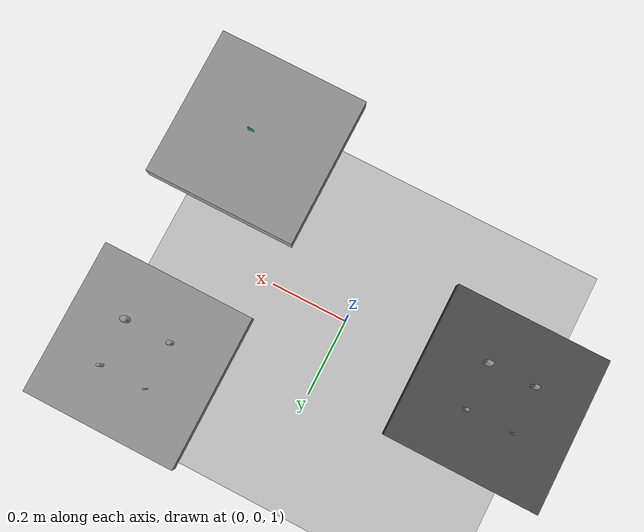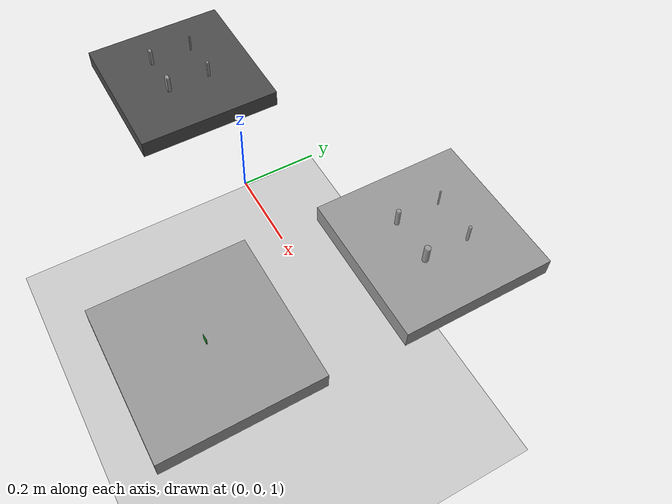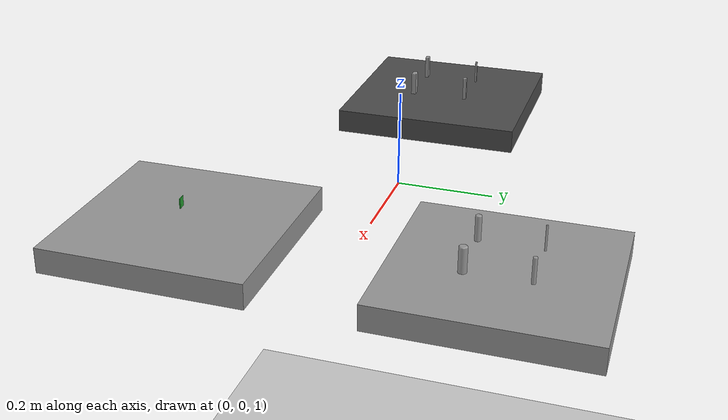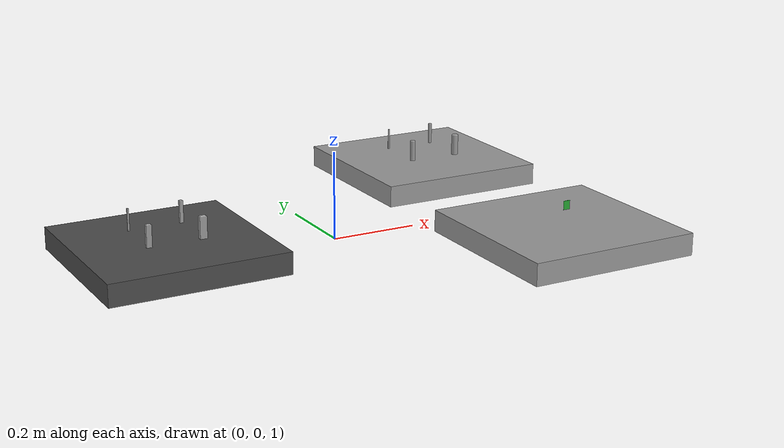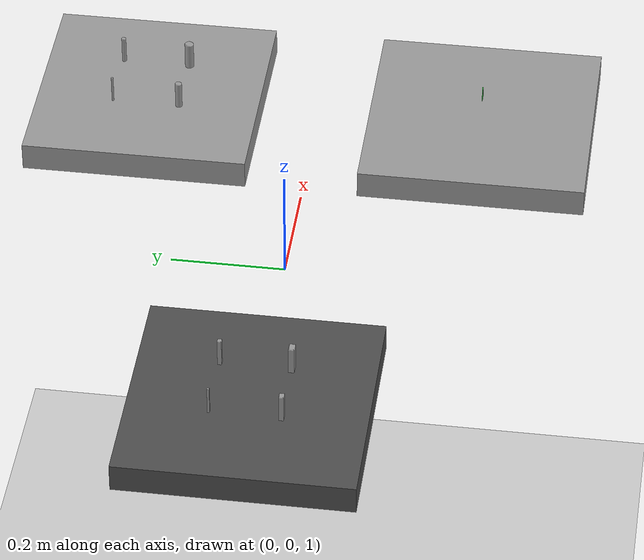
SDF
<sdf version="1.4">
 <world name="default">
  <include><uri>model://ground_plane</uri></include>
  <include><uri>model://sun</uri></include>
  <plugin name="gazebo_ros_state" filename="libgazebo_ros_state.so">
   <ros><namespace>/</namespace></ros>
   <update_rate>50</update_rate>
  </plugin>
  <plugin name="gazebo_link_attacher" filename="libgazebo_link_attacher.so"/>
  <model name="cam_mk3">
   <static>true</static>
   <pose>-0.4 0 1.40 0 1.5708 0</pose>
   <link name="link">
    <visual name="visual">
     <geometry><box><size>0.03 0.03 0.03</size></box></geometry>
     <material>
      <script><uri>file://media/materials/scripts/gazebo.material</uri><name>Gazebo/Blue</name></script>
     </material>
     <transparency>1.0</transparency>
    </visual>
    <sensor type="depth" name="depth_camera">
     <update_rate>15.0</update_rate>
     <camera>
      <horizontal_fov>0.8</horizontal_fov>
      <image><width>640</width><height>480</height><format>R8G8B8</format></image>
      <clip><near>0.05</near><far>5.0</far></clip>
     </camera>
     <plugin name="camera_controller" filename="libgazebo_ros_camera.so">
      <ros><namespace>cam_mk3</namespace></ros>
      <camera_name>cam_mk3</camera_name>
      <frame_name>cam_mk3_link</frame_name>
      <min_depth>0.05</min_depth>
     </plugin>
    </sensor>
   </link>
  </model>
  <model name="cam_mk4_1">
   <static>true</static>
   <pose>0.4 0.3 1.40 0 1.5708 0</pose>
   <link name="link">
    <visual name="visual">
     <geometry><box><size>0.03 0.03 0.03</size></box></geometry>
     <material>
      <script><uri>file://media/materials/scripts/gazebo.material</uri><name>Gazebo/Blue</name></script>
     </material>
     <transparency>1.0</transparency>
    </visual>
    <sensor type="depth" name="depth_camera">
     <update_rate>15.0</update_rate>
     <camera>
      <horizontal_fov>0.8</horizontal_fov>
      <image><width>640</width><height>480</height><format>R8G8B8</format></image>
      <clip><near>0.05</near><far>5.0</far></clip>
     </camera>
     <plugin name="camera_controller" filename="libgazebo_ros_camera.so">
      <ros><namespace>cam_mk4_1</namespace></ros>
      <camera_name>cam_mk4_1</camera_name>
      <frame_name>cam_mk4_1_link</frame_name>
      <min_depth>0.05</min_depth>
     </plugin>
    </sensor>
   </link>
  </model>
  <model name="cam_mk4_2">
   <static>true</static>
   <pose>0.4 -0.3 1.40 0 1.5708 0</pose>
   <link name="link">
    <visual name="visual">
     <geometry><box><size>0.03 0.03 0.03</size></box></geometry>
     <material>
      <script><uri>file://media/materials/scripts/gazebo.material</uri><name>Gazebo/Blue</name></script>
     </material>
     <transparency>1.0</transparency>
    </visual>
    <sensor type="depth" name="depth_camera">
     <update_rate>15.0</update_rate>
     <camera>
      <horizontal_fov>0.8</horizontal_fov>
      <image><width>640</width><height>480</height><format>R8G8B8</format></image>
      <clip><near>0.05</near><far>5.0</far></clip>
     </camera>
     <plugin name="camera_controller" filename="libgazebo_ros_camera.so">
      <ros><namespace>cam_mk4_2</namespace></ros>
      <camera_name>cam_mk4_2</camera_name>
      <frame_name>cam_mk4_2_link</frame_name>
      <min_depth>0.05</min_depth>
     </plugin>
    </sensor>
   </link>
  </model>
  <model name="cam_assembly">
   <static>true</static>
   <pose>0 0 1.55 0 1.5708 0</pose>
   <link name="link">
    <visual name="visual">
     <geometry><box><size>0.03 0.03 0.03</size></box></geometry>
     <material>
      <script><uri>file://media/materials/scripts/gazebo.material</uri><name>Gazebo/Red</name></script>
     </material>
     <transparency>1.0</transparency>
    </visual>
    <sensor type="depth" name="depth_camera">
     <update_rate>15.0</update_rate>
     <camera>
      <horizontal_fov>0.95</horizontal_fov>
      <image><width>640</width><height>480</height><format>R8G8B8</format></image>
      <clip><near>0.05</near><far>2.0</far></clip>
     </camera>
     <plugin name="camera_controller" filename="libgazebo_ros_camera.so">
      <ros><namespace>cam_assembly</namespace></ros>
      <camera_name>cam_assembly</camera_name>
      <frame_name>cam_assembly_link</frame_name>
     </plugin>
    </sensor>
   </link>
  </model>
  <model name="prusa_mk3">
   <static>true</static>
   <pose>-0.4 0 1.04 0 0 0</pose>
   <link name="link">
    <collision name="collision"><geometry><box><size>0.4 0.4 0.05</size></box></geometry></collision>
    <visual name="visual">
     <geometry><box><size>0.4 0.4 0.05</size></box></geometry>
     <material>
      <script><uri>file://media/materials/scripts/gazebo.material</uri><name>Gazebo/DarkGrey</name></script>
     </material>
    </visual>
   </link>
  </model>
  <model name="prusa_mk4_1">
   <static>true</static>
   <pose>0.4 0.3 1.04 0 0 0</pose>
   <link name="link">
    <collision name="collision"><geometry><box><size>0.4 0.4 0.05</size></box></geometry></collision>
    <visual name="visual">
     <geometry><box><size>0.4 0.4 0.05</size></box></geometry>
     <material>
      <script><uri>file://media/materials/scripts/gazebo.material</uri><name>Gazebo/Grey</name></script>
     </material>
    </visual>
   </link>
  </model>
  <model name="prusa_mk4_2">
   <static>true</static>
   <pose>0.4 -0.3 1.04 0 0 0</pose>
   <link name="link">
    <collision name="collision"><geometry><box><size>0.4 0.4 0.05</size></box></geometry></collision>
    <visual name="visual">
     <geometry><box><size>0.4 0.4 0.05</size></box></geometry>
     <material>
      <script><uri>file://media/materials/scripts/gazebo.material</uri><name>Gazebo/Grey</name></script>
     </material>
    </visual>
   </link>
  </model>
  <model name="KET4_Square_4mm">
   <pose>-0.46 0.06 1.075 0 0 0</pose>
   <link name="link">
    <inertial>
     <pose>0 0 0.025 0 0 0</pose>
     <mass>0.01</mass>
     <inertia><ixx>0.0001</ixx><iyy>0.0001</iyy><izz>0.0001</izz></inertia>
    </inertial>
    <collision name="collision">
     <pose>0 0 0.025 0 0 0</pose>
     <geometry><box><size>0.004 0.004 0.05</size></box></geometry>
    </collision>
    <visual name="visual">
     <pose>-0.002 -0.002 0 0 0 0</pose>
     <geometry>
      <mesh><uri>model://cad_models/KET4_Square_4mm.STL</uri><scale>0.001 0.001 0.001</scale></mesh>
     </geometry>
     <material>
      <script><uri>file://media/materials/scripts/gazebo.material</uri><name>Gazebo/Grey</name></script>
     </material>
    </visual>
   </link>
  </model>
  <model name="KET8_Square_8mm">
   <pose>-0.34 0.06 1.075 0 0 0</pose>
   <link name="link">
    <inertial>
     <pose>0 0 0.025 0 0 0</pose>
     <mass>0.03</mass>
     <inertia><ixx>0.0001</ixx><iyy>0.0001</iyy><izz>0.0001</izz></inertia>
    </inertial>
    <collision name="collision">
     <pose>0 0 0.025 0 0 0</pose>
     <geometry><box><size>0.008 0.007 0.05</size></box></geometry>
    </collision>
    <visual name="visual">
     <pose>-0.004 -0.0035 0 0 0 0</pose>
     <geometry>
      <mesh><uri>model://cad_models/KET8_Square_8mm.STL</uri><scale>0.001 0.001 0.001</scale></mesh>
     </geometry>
     <material>
      <script><uri>file://media/materials/scripts/gazebo.material</uri><name>Gazebo/Grey</name></script>
     </material>
    </visual>
   </link>
  </model>
  <model name="KET12_Square_12mm">
   <pose>-0.46 -0.06 1.075 0 0 0</pose>
   <link name="link">
    <inertial>
     <pose>0 0 0.025 0 0 0</pose>
     <mass>0.04</mass>
     <inertia><ixx>0.0001</ixx><iyy>0.0001</iyy><izz>0.0001</izz></inertia>
    </inertial>
    <collision name="collision">
     <pose>0 0 0.025 0 0 0</pose>
     <geometry><box><size>0.012 0.008 0.05</size></box></geometry>
    </collision>
    <visual name="visual">
     <pose>-0.006 -0.004 0 0 0 0</pose>
     <geometry>
      <mesh><uri>model://cad_models/KET12_Square_12mm.STL</uri><scale>0.001 0.001 0.001</scale></mesh>
     </geometry>
     <material>
      <script><uri>file://media/materials/scripts/gazebo.material</uri><name>Gazebo/Grey</name></script>
     </material>
    </visual>
   </link>
  </model>
  <model name="KET16_Square_16mm">
   <pose>-0.34 -0.06 1.075 0 0 0</pose>
   <link name="link">
    <inertial>
     <pose>0 0 0.025 0 0 0</pose>
     <mass>0.07</mass>
     <inertia><ixx>0.0001</ixx><iyy>0.0001</iyy><izz>0.0001</izz></inertia>
    </inertial>
    <collision name="collision">
     <pose>0 0 0.025 0 0 0</pose>
     <geometry><box><size>0.016 0.010 0.05</size></box></geometry>
    </collision>
    <visual name="visual">
     <pose>-0.008 -0.005 0 0 0 0</pose>
     <geometry>
      <mesh><uri>model://cad_models/KET16_Square_16mm.STL</uri><scale>0.001 0.001 0.001</scale></mesh>
     </geometry>
     <material>
      <script><uri>file://media/materials/scripts/gazebo.material</uri><name>Gazebo/Grey</name></script>
     </material>
    </visual>
   </link>
  </model>
  <model name="RGOCG4-50_Round_4mm">
   <pose>0.34 0.36 1.075 0 0 0</pose>
   <link name="link">
    <inertial>
     <pose>0 0 0.025 0 0 0</pose>
     <mass>0.01</mass>
     <inertia><ixx>0.0001</ixx><iyy>0.0001</iyy><izz>0.0001</izz></inertia>
    </inertial>
    <collision name="collision">
     <pose>0 0 0.025 0 0 0</pose>
     <geometry><cylinder><radius>0.002</radius><length>0.05</length></cylinder></geometry>
    </collision>
    <visual name="visual">
     <pose>-0.002 -0.002 0 0 0 0</pose>
     <geometry>
      <mesh><uri>model://cad_models/RGOCG4-50_Round_4mm.STL</uri><scale>0.001 0.001 0.001</scale></mesh>
     </geometry>
     <material>
      <script><uri>file://media/materials/scripts/gazebo.material</uri><name>Gazebo/Grey</name></script>
     </material>
    </visual>
   </link>
  </model>
  <model name="RGOCG8-50_8mm">
   <pose>0.46 0.36 1.075 0 0 0</pose>
   <link name="link">
    <inertial>
     <pose>0 0 0.025 0 0 0</pose>
     <mass>0.02</mass>
     <inertia><ixx>0.0001</ixx><iyy>0.0001</iyy><izz>0.0001</izz></inertia>
    </inertial>
    <collision name="collision">
     <pose>0 0 0.025 0 0 0</pose>
     <geometry><cylinder><radius>0.004</radius><length>0.05</length></cylinder></geometry>
    </collision>
    <visual name="visual">
     <pose>-0.004 -0.004 0 0 0 0</pose>
     <geometry>
      <mesh><uri>model://cad_models/RGOCG8-50_8mm.STL</uri><scale>0.001 0.001 0.001</scale></mesh>
     </geometry>
     <material>
      <script><uri>file://media/materials/scripts/gazebo.material</uri><name>Gazebo/Grey</name></script>
     </material>
    </visual>
   </link>
  </model>
  <model name="RGOCG12-50_12mm">
   <pose>0.34 0.24 1.075 0 0 0</pose>
   <link name="link">
    <inertial>
     <pose>0 0 0.025 0 0 0</pose>
     <mass>0.05</mass>
     <inertia><ixx>0.0001</ixx><iyy>0.0001</iyy><izz>0.0001</izz></inertia>
    </inertial>
    <collision name="collision">
     <pose>0 0 0.025 0 0 0</pose>
     <geometry><cylinder><radius>0.006</radius><length>0.05</length></cylinder></geometry>
    </collision>
    <visual name="visual">
     <pose>-0.006 -0.006 0 0 0 0</pose>
     <geometry>
      <mesh><uri>model://cad_models/RGOCG12-50_12mm.STL</uri><scale>0.001 0.001 0.001</scale></mesh>
     </geometry>
     <material>
      <script><uri>file://media/materials/scripts/gazebo.material</uri><name>Gazebo/Grey</name></script>
     </material>
    </visual>
   </link>
  </model>
  <model name="RGOCG16-50_16mm">
   <pose>0.46 0.24 1.075 0 0 0</pose>
   <link name="link">
    <inertial>
     <pose>0 0 0.025 0 0 0</pose>
     <mass>0.08</mass>
     <inertia><ixx>0.0001</ixx><iyy>0.0001</iyy><izz>0.0001</izz></inertia>
    </inertial>
    <collision name="collision">
     <pose>0 0 0.025 0 0 0</pose>
     <geometry><cylinder><radius>0.008</radius><length>0.05</length></cylinder></geometry>
    </collision>
    <visual name="visual">
     <pose>-0.008 -0.008 0 0 0 0</pose>
     <geometry>
      <mesh><uri>model://cad_models/RGOCG16-50_16mm.STL</uri><scale>0.001 0.001 0.001</scale></mesh>
     </geometry>
     <material>
      <script><uri>file://media/materials/scripts/gazebo.material</uri><name>Gazebo/Grey</name></script>
     </material>
    </visual>
   </link>
  </model>
  <include><uri>model://gear_medium</uri><name>gear_medium</name><pose>0.40 -0.30 1.10 0 0 0</pose></include>
  <physics type="ode">
   <max_step_size>0.001</max_step_size>
   <real_time_factor>1</real_time_factor>
   <real_time_update_rate>1000</real_time_update_rate>
   <gravity>0 0 -9.81</gravity>
  </physics>
 </world>
</sdf>

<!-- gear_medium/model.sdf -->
<sdf version="1.6">
  <model name="gear_medium">
    <link name="link">
      <inertial>
        <mass>0.10</mass>
        <inertia>
          <ixx>1.4356194535e-05</ixx><ixy>0</ixy><ixz>0</ixz>
          <iyy>1.4356194535e-05</iyy><iyz>0</iyz><izz>2.2045722402e-05</izz>
        </inertia>
      </inertial>
      <!-- 64 convex sectors from Gear_Medium.STL in metres. The 5.3 mm entry
           chamfer is not the through bore; the narrowest CAD opening is retained. -->
      <collision name="collision">
        <pose>0 0 0 0 0 0</pose>
        <geometry><mesh><uri>model://gear_medium/meshes/Gear_Medium_collision_segment.stl</uri><scale>1 1 1</scale></mesh></geometry>
        <surface>
          <friction><ode><mu>0.5</mu><mu2>0.5</mu2></ode></friction>
          <contact><ode><kp>20000.0</kp><kd>8.0</kd><max_vel>0.05</max_vel><min_depth>0.0005</min_depth></ode></contact>
        </surface>
      </collision>
      <collision name="collision_01">
        <pose>0 0 0 0 0 0.09817477042468103</pose>
        <geometry><mesh><uri>model://gear_medium/meshes/Gear_Medium_collision_segment.stl</uri><scale>1 1 1</scale></mesh></geometry>
        <surface>
          <friction><ode><mu>0.5</mu><mu2>0.5</mu2></ode></friction>
          <contact><ode><kp>20000.0</kp><kd>8.0</kd><max_vel>0.05</max_vel><min_depth>0.0005</min_depth></ode></contact>
        </surface>
      </collision>
      <collision name="collision_02">
        <pose>0 0 0 0 0 0.1963495408493621</pose>
        <geometry><mesh><uri>model://gear_medium/meshes/Gear_Medium_collision_segment.stl</uri><scale>1 1 1</scale></mesh></geometry>
        <surface>
          <friction><ode><mu>0.5</mu><mu2>0.5</mu2></ode></friction>
          <contact><ode><kp>20000.0</kp><kd>8.0</kd><max_vel>0.05</max_vel><min_depth>0.0005</min_depth></ode></contact>
        </surface>
      </collision>
      <collision name="collision_03">
        <pose>0 0 0 0 0 0.2945243112740431</pose>
        <geometry><mesh><uri>model://gear_medium/meshes/Gear_Medium_collision_segment.stl</uri><scale>1 1 1</scale></mesh></geometry>
        <surface>
          <friction><ode><mu>0.5</mu><mu2>0.5</mu2></ode></friction>
          <contact><ode><kp>20000.0</kp><kd>8.0</kd><max_vel>0.05</max_vel><min_depth>0.0005</min_depth></ode></contact>
        </surface>
      </collision>
      <collision name="collision_04">
        <pose>0 0 0 0 0 0.3926990816987241</pose>
        <geometry><mesh><uri>model://gear_medium/meshes/Gear_Medium_collision_segment.stl</uri><scale>1 1 1</scale></mesh></geometry>
        <surface>
          <friction><ode><mu>0.5</mu><mu2>0.5</mu2></ode></friction>
          <contact><ode><kp>20000.0</kp><kd>8.0</kd><max_vel>0.05</max_vel><min_depth>0.0005</min_depth></ode></contact>
        </surface>
      </collision>
      <collision name="collision_05">
        <pose>0 0 0 0 0 0.4908738521234052</pose>
        <geometry><mesh><uri>model://gear_medium/meshes/Gear_Medium_collision_segment.stl</uri><scale>1 1 1</scale></mesh></geometry>
        <surface>
          <friction><ode><mu>0.5</mu><mu2>0.5</mu2></ode></friction>
          <contact><ode><kp>20000.0</kp><kd>8.0</kd><max_vel>0.05</max_vel><min_depth>0.0005</min_depth></ode></contact>
        </surface>
      </collision>
      <collision name="collision_06">
        <pose>0 0 0 0 0 0.5890486225480862</pose>
        <geometry><mesh><uri>model://gear_medium/meshes/Gear_Medium_collision_segment.stl</uri><scale>1 1 1</scale></mesh></geometry>
        <surface>
          <friction><ode><mu>0.5</mu><mu2>0.5</mu2></ode></friction>
          <contact><ode><kp>20000.0</kp><kd>8.0</kd><max_vel>0.05</max_vel><min_depth>0.0005</min_depth></ode></contact>
        </surface>
      </collision>
      <collision name="collision_07">
        <pose>0 0 0 0 0 0.6872233929727672</pose>
        <geometry><mesh><uri>model://gear_medium/meshes/Gear_Medium_collision_segment.stl</uri><scale>1 1 1</scale></mesh></geometry>
        <surface>
          <friction><ode><mu>0.5</mu><mu2>0.5</mu2></ode></friction>
          <contact><ode><kp>20000.0</kp><kd>8.0</kd><max_vel>0.05</max_vel><min_depth>0.0005</min_depth></ode></contact>
        </surface>
      </collision>
      <collision name="collision_08">
        <pose>0 0 0 0 0 0.7853981633974483</pose>
        <geometry><mesh><uri>model://gear_medium/meshes/Gear_Medium_collision_segment.stl</uri><scale>1 1 1</scale></mesh></geometry>
        <surface>
          <friction><ode><mu>0.5</mu><mu2>0.5</mu2></ode></friction>
          <contact><ode><kp>20000.0</kp><kd>8.0</kd><max_vel>0.05</max_vel><min_depth>0.0005</min_depth></ode></contact>
        </surface>
      </collision>
      <collision name="collision_09">
        <pose>0 0 0 0 0 0.8835729338221293</pose>
        <geometry><mesh><uri>model://gear_medium/meshes/Gear_Medium_collision_segment.stl</uri><scale>1 1 1</scale></mesh></geometry>
        <surface>
          <friction><ode><mu>0.5</mu><mu2>0.5</mu2></ode></friction>
          <contact><ode><kp>20000.0</kp><kd>8.0</kd><max_vel>0.05</max_vel><min_depth>0.0005</min_depth></ode></contact>
        </surface>
      </collision>
      <collision name="collision_10">
        <pose>0 0 0 0 0 0.9817477042468103</pose>
        <geometry><mesh><uri>model://gear_medium/meshes/Gear_Medium_collision_segment.stl</uri><scale>1 1 1</scale></mesh></geometry>
        <surface>
          <friction><ode><mu>0.5</mu><mu2>0.5</mu2></ode></friction>
          <contact><ode><kp>20000.0</kp><kd>8.0</kd><max_vel>0.05</max_vel><min_depth>0.0005</min_depth></ode></contact>
        </surface>
      </collision>
      <collision name="collision_11">
        <pose>0 0 0 0 0 1.079922474671491</pose>
        <geometry><mesh><uri>model://gear_medium/meshes/Gear_Medium_collision_segment.stl</uri><scale>1 1 1</scale></mesh></geometry>
        <surface>
          <friction><ode><mu>0.5</mu><mu2>0.5</mu2></ode></friction>
          <contact><ode><kp>20000.0</kp><kd>8.0</kd><max_vel>0.05</max_vel><min_depth>0.0005</min_depth></ode></contact>
        </surface>
      </collision>
      <collision name="collision_12">
        <pose>0 0 0 0 0 1.178097245096172</pose>
        <geometry><mesh><uri>model://gear_medium/meshes/Gear_Medium_collision_segment.stl</uri><scale>1 1 1</scale></mesh></geometry>
        <surface>
          <friction><ode><mu>0.5</mu><mu2>0.5</mu2></ode></friction>
          <contact><ode><kp>20000.0</kp><kd>8.0</kd><max_vel>0.05</max_vel><min_depth>0.0005</min_depth></ode></contact>
        </surface>
      </collision>
      <collision name="collision_13">
        <pose>0 0 0 0 0 1.276272015520854</pose>
        <geometry><mesh><uri>model://gear_medium/meshes/Gear_Medium_collision_segment.stl</uri><scale>1 1 1</scale></mesh></geometry>
        <surface>
          <friction><ode><mu>0.5</mu><mu2>0.5</mu2></ode></friction>
          <contact><ode><kp>20000.0</kp><kd>8.0</kd><max_vel>0.05</max_vel><min_depth>0.0005</min_depth></ode></contact>
        </surface>
      </collision>
      <collision name="collision_14">
        <pose>0 0 0 0 0 1.374446785945534</pose>
        <geometry><mesh><uri>model://gear_medium/meshes/Gear_Medium_collision_segment.stl</uri><scale>1 1 1</scale></mesh></geometry>
        <surface>
          <friction><ode><mu>0.5</mu><mu2>0.5</mu2></ode></friction>
          <contact><ode><kp>20000.0</kp><kd>8.0</kd><max_vel>0.05</max_vel><min_depth>0.0005</min_depth></ode></contact>
        </surface>
      </collision>
      <collision name="collision_15">
        <pose>0 0 0 0 0 1.472621556370215</pose>
        <geometry><mesh><uri>model://gear_medium/meshes/Gear_Medium_collision_segment.stl</uri><scale>1 1 1</scale></mesh></geometry>
        <surface>
          <friction><ode><mu>0.5</mu><mu2>0.5</mu2></ode></friction>
          <contact><ode><kp>20000.0</kp><kd>8.0</kd><max_vel>0.05</max_vel><min_depth>0.0005</min_depth></ode></contact>
        </surface>
      </collision>
      <collision name="collision_16">
        <pose>0 0 0 0 0 1.570796326794897</pose>
        <geometry><mesh><uri>model://gear_medium/meshes/Gear_Medium_collision_segment.stl</uri><scale>1 1 1</scale></mesh></geometry>
        <surface>
          <friction><ode><mu>0.5</mu><mu2>0.5</mu2></ode></friction>
          <contact><ode><kp>20000.0</kp><kd>8.0</kd><max_vel>0.05</max_vel><min_depth>0.0005</min_depth></ode></contact>
        </surface>
      </collision>
      <collision name="collision_17">
        <pose>0 0 0 0 0 1.668971097219578</pose>
        <geometry><mesh><uri>model://gear_medium/meshes/Gear_Medium_collision_segment.stl</uri><scale>1 1 1</scale></mesh></geometry>
        <surface>
          <friction><ode><mu>0.5</mu><mu2>0.5</mu2></ode></friction>
          <contact><ode><kp>20000.0</kp><kd>8.0</kd><max_vel>0.05</max_vel><min_depth>0.0005</min_depth></ode></contact>
        </surface>
      </collision>
      <collision name="collision_18">
        <pose>0 0 0 0 0 1.767145867644259</pose>
        <geometry><mesh><uri>model://gear_medium/meshes/Gear_Medium_collision_segment.stl</uri><scale>1 1 1</scale></mesh></geometry>
        <surface>
          <friction><ode><mu>0.5</mu><mu2>0.5</mu2></ode></friction>
          <contact><ode><kp>20000.0</kp><kd>8.0</kd><max_vel>0.05</max_vel><min_depth>0.0005</min_depth></ode></contact>
        </surface>
      </collision>
      <collision name="collision_19">
        <pose>0 0 0 0 0 1.86532063806894</pose>
        <geometry><mesh><uri>model://gear_medium/meshes/Gear_Medium_collision_segment.stl</uri><scale>1 1 1</scale></mesh></geometry>
        <surface>
          <friction><ode><mu>0.5</mu><mu2>0.5</mu2></ode></friction>
          <contact><ode><kp>20000.0</kp><kd>8.0</kd><max_vel>0.05</max_vel><min_depth>0.0005</min_depth></ode></contact>
        </surface>
      </collision>
      <collision name="collision_20">
        <pose>0 0 0 0 0 1.963495408493621</pose>
        <geometry><mesh><uri>model://gear_medium/meshes/Gear_Medium_collision_segment.stl</uri><scale>1 1 1</scale></mesh></geometry>
        <surface>
          <friction><ode><mu>0.5</mu><mu2>0.5</mu2></ode></friction>
          <contact><ode><kp>20000.0</kp><kd>8.0</kd><max_vel>0.05</max_vel><min_depth>0.0005</min_depth></ode></contact>
        </surface>
      </collision>
      <collision name="collision_21">
        <pose>0 0 0 0 0 2.061670178918302</pose>
        <geometry><mesh><uri>model://gear_medium/meshes/Gear_Medium_collision_segment.stl</uri><scale>1 1 1</scale></mesh></geometry>
        <surface>
          <friction><ode><mu>0.5</mu><mu2>0.5</mu2></ode></friction>
          <contact><ode><kp>20000.0</kp><kd>8.0</kd><max_vel>0.05</max_vel><min_depth>0.0005</min_depth></ode></contact>
        </surface>
      </collision>
      <collision name="collision_22">
        <pose>0 0 0 0 0 2.159844949342983</pose>
        <geometry><mesh><uri>model://gear_medium/meshes/Gear_Medium_collision_segment.stl</uri><scale>1 1 1</scale></mesh></geometry>
        <surface>
          <friction><ode><mu>0.5</mu><mu2>0.5</mu2></ode></friction>
          <contact><ode><kp>20000.0</kp><kd>8.0</kd><max_vel>0.05</max_vel><min_depth>0.0005</min_depth></ode></contact>
        </surface>
      </collision>
      <collision name="collision_23">
        <pose>0 0 0 0 0 2.258019719767664</pose>
        <geometry><mesh><uri>model://gear_medium/meshes/Gear_Medium_collision_segment.stl</uri><scale>1 1 1</scale></mesh></geometry>
        <surface>
          <friction><ode><mu>0.5</mu><mu2>0.5</mu2></ode></friction>
          <contact><ode><kp>20000.0</kp><kd>8.0</kd><max_vel>0.05</max_vel><min_depth>0.0005</min_depth></ode></contact>
        </surface>
      </collision>
      <collision name="collision_24">
        <pose>0 0 0 0 0 2.356194490192345</pose>
        <geometry><mesh><uri>model://gear_medium/meshes/Gear_Medium_collision_segment.stl</uri><scale>1 1 1</scale></mesh></geometry>
        <surface>
          <friction><ode><mu>0.5</mu><mu2>0.5</mu2></ode></friction>
          <contact><ode><kp>20000.0</kp><kd>8.0</kd><max_vel>0.05</max_vel><min_depth>0.0005</min_depth></ode></contact>
        </surface>
      </collision>
      <collision name="collision_25">
        <pose>0 0 0 0 0 2.454369260617026</pose>
        <geometry><mesh><uri>model://gear_medium/meshes/Gear_Medium_collision_segment.stl</uri><scale>1 1 1</scale></mesh></geometry>
        <surface>
          <friction><ode><mu>0.5</mu><mu2>0.5</mu2></ode></friction>
          <contact><ode><kp>20000.0</kp><kd>8.0</kd><max_vel>0.05</max_vel><min_depth>0.0005</min_depth></ode></contact>
        </surface>
      </collision>
      <collision name="collision_26">
        <pose>0 0 0 0 0 2.552544031041707</pose>
        <geometry><mesh><uri>model://gear_medium/meshes/Gear_Medium_collision_segment.stl</uri><scale>1 1 1</scale></mesh></geometry>
        <surface>
          <friction><ode><mu>0.5</mu><mu2>0.5</mu2></ode></friction>
          <contact><ode><kp>20000.0</kp><kd>8.0</kd><max_vel>0.05</max_vel><min_depth>0.0005</min_depth></ode></contact>
        </surface>
      </collision>
      <collision name="collision_27">
        <pose>0 0 0 0 0 2.650718801466388</pose>
        <geometry><mesh><uri>model://gear_medium/meshes/Gear_Medium_collision_segment.stl</uri><scale>1 1 1</scale></mesh></geometry>
        <surface>
          <friction><ode><mu>0.5</mu><mu2>0.5</mu2></ode></friction>
          <contact><ode><kp>20000.0</kp><kd>8.0</kd><max_vel>0.05</max_vel><min_depth>0.0005</min_depth></ode></contact>
        </surface>
      </collision>
      <collision name="collision_28">
        <pose>0 0 0 0 0 2.748893571891069</pose>
        <geometry><mesh><uri>model://gear_medium/meshes/Gear_Medium_collision_segment.stl</uri><scale>1 1 1</scale></mesh></geometry>
        <surface>
          <friction><ode><mu>0.5</mu><mu2>0.5</mu2></ode></friction>
          <contact><ode><kp>20000.0</kp><kd>8.0</kd><max_vel>0.05</max_vel><min_depth>0.0005</min_depth></ode></contact>
        </surface>
      </collision>
      <collision name="collision_29">
        <pose>0 0 0 0 0 2.84706834231575</pose>
        <geometry><mesh><uri>model://gear_medium/meshes/Gear_Medium_collision_segment.stl</uri><scale>1 1 1</scale></mesh></geometry>
        <surface>
          <friction><ode><mu>0.5</mu><mu2>0.5</mu2></ode></friction>
          <contact><ode><kp>20000.0</kp><kd>8.0</kd><max_vel>0.05</max_vel><min_depth>0.0005</min_depth></ode></contact>
        </surface>
      </collision>
      <collision name="collision_30">
        <pose>0 0 0 0 0 2.945243112740431</pose>
        <geometry><mesh><uri>model://gear_medium/meshes/Gear_Medium_collision_segment.stl</uri><scale>1 1 1</scale></mesh></geometry>
        <surface>
          <friction><ode><mu>0.5</mu><mu2>0.5</mu2></ode></friction>
          <contact><ode><kp>20000.0</kp><kd>8.0</kd><max_vel>0.05</max_vel><min_depth>0.0005</min_depth></ode></contact>
        </surface>
      </collision>
      <collision name="collision_31">
        <pose>0 0 0 0 0 3.043417883165112</pose>
        <geometry><mesh><uri>model://gear_medium/meshes/Gear_Medium_collision_segment.stl</uri><scale>1 1 1</scale></mesh></geometry>
        <surface>
          <friction><ode><mu>0.5</mu><mu2>0.5</mu2></ode></friction>
          <contact><ode><kp>20000.0</kp><kd>8.0</kd><max_vel>0.05</max_vel><min_depth>0.0005</min_depth></ode></contact>
        </surface>
      </collision>
      <collision name="collision_32">
        <pose>0 0 0 0 0 3.141592653589793</pose>
        <geometry><mesh><uri>model://gear_medium/meshes/Gear_Medium_collision_segment.stl</uri><scale>1 1 1</scale></mesh></geometry>
        <surface>
          <friction><ode><mu>0.5</mu><mu2>0.5</mu2></ode></friction>
          <contact><ode><kp>20000.0</kp><kd>8.0</kd><max_vel>0.05</max_vel><min_depth>0.0005</min_depth></ode></contact>
        </surface>
      </collision>
      <collision name="collision_33">
        <pose>0 0 0 0 0 3.239767424014474</pose>
        <geometry><mesh><uri>model://gear_medium/meshes/Gear_Medium_collision_segment.stl</uri><scale>1 1 1</scale></mesh></geometry>
        <surface>
          <friction><ode><mu>0.5</mu><mu2>0.5</mu2></ode></friction>
          <contact><ode><kp>20000.0</kp><kd>8.0</kd><max_vel>0.05</max_vel><min_depth>0.0005</min_depth></ode></contact>
        </surface>
      </collision>
      <collision name="collision_34">
        <pose>0 0 0 0 0 3.337942194439155</pose>
        <geometry><mesh><uri>model://gear_medium/meshes/Gear_Medium_collision_segment.stl</uri><scale>1 1 1</scale></mesh></geometry>
        <surface>
          <friction><ode><mu>0.5</mu><mu2>0.5</mu2></ode></friction>
          <contact><ode><kp>20000.0</kp><kd>8.0</kd><max_vel>0.05</max_vel><min_depth>0.0005</min_depth></ode></contact>
        </surface>
      </collision>
      <collision name="collision_35">
        <pose>0 0 0 0 0 3.436116964863836</pose>
        <geometry><mesh><uri>model://gear_medium/meshes/Gear_Medium_collision_segment.stl</uri><scale>1 1 1</scale></mesh></geometry>
        <surface>
          <friction><ode><mu>0.5</mu><mu2>0.5</mu2></ode></friction>
          <contact><ode><kp>20000.0</kp><kd>8.0</kd><max_vel>0.05</max_vel><min_depth>0.0005</min_depth></ode></contact>
        </surface>
      </collision>
      <collision name="collision_36">
        <pose>0 0 0 0 0 3.534291735288517</pose>
        <geometry><mesh><uri>model://gear_medium/meshes/Gear_Medium_collision_segment.stl</uri><scale>1 1 1</scale></mesh></geometry>
        <surface>
          <friction><ode><mu>0.5</mu><mu2>0.5</mu2></ode></friction>
          <contact><ode><kp>20000.0</kp><kd>8.0</kd><max_vel>0.05</max_vel><min_depth>0.0005</min_depth></ode></contact>
        </surface>
      </collision>
      <collision name="collision_37">
        <pose>0 0 0 0 0 3.632466505713198</pose>
        <geometry><mesh><uri>model://gear_medium/meshes/Gear_Medium_collision_segment.stl</uri><scale>1 1 1</scale></mesh></geometry>
        <surface>
          <friction><ode><mu>0.5</mu><mu2>0.5</mu2></ode></friction>
          <contact><ode><kp>20000.0</kp><kd>8.0</kd><max_vel>0.05</max_vel><min_depth>0.0005</min_depth></ode></contact>
        </surface>
      </collision>
      <collision name="collision_38">
        <pose>0 0 0 0 0 3.730641276137879</pose>
        <geometry><mesh><uri>model://gear_medium/meshes/Gear_Medium_collision_segment.stl</uri><scale>1 1 1</scale></mesh></geometry>
        <surface>
          <friction><ode><mu>0.5</mu><mu2>0.5</mu2></ode></friction>
          <contact><ode><kp>20000.0</kp><kd>8.0</kd><max_vel>0.05</max_vel><min_depth>0.0005</min_depth></ode></contact>
        </surface>
      </collision>
      <collision name="collision_39">
        <pose>0 0 0 0 0 3.82881604656256</pose>
        <geometry><mesh><uri>model://gear_medium/meshes/Gear_Medium_collision_segment.stl</uri><scale>1 1 1</scale></mesh></geometry>
        <surface>
          <friction><ode><mu>0.5</mu><mu2>0.5</mu2></ode></friction>
          <contact><ode><kp>20000.0</kp><kd>8.0</kd><max_vel>0.05</max_vel><min_depth>0.0005</min_depth></ode></contact>
        </surface>
      </collision>
      <collision name="collision_40">
        <pose>0 0 0 0 0 3.926990816987241</pose>
        <geometry><mesh><uri>model://gear_medium/meshes/Gear_Medium_collision_segment.stl</uri><scale>1 1 1</scale></mesh></geometry>
        <surface>
          <friction><ode><mu>0.5</mu><mu2>0.5</mu2></ode></friction>
          <contact><ode><kp>20000.0</kp><kd>8.0</kd><max_vel>0.05</max_vel><min_depth>0.0005</min_depth></ode></contact>
        </surface>
      </collision>
      <collision name="collision_41">
        <pose>0 0 0 0 0 4.025165587411922</pose>
        <geometry><mesh><uri>model://gear_medium/meshes/Gear_Medium_collision_segment.stl</uri><scale>1 1 1</scale></mesh></geometry>
        <surface>
          <friction><ode><mu>0.5</mu><mu2>0.5</mu2></ode></friction>
          <contact><ode><kp>20000.0</kp><kd>8.0</kd><max_vel>0.05</max_vel><min_depth>0.0005</min_depth></ode></contact>
        </surface>
      </collision>
      <collision name="collision_42">
        <pose>0 0 0 0 0 4.123340357836604</pose>
        <geometry><mesh><uri>model://gear_medium/meshes/Gear_Medium_collision_segment.stl</uri><scale>1 1 1</scale></mesh></geometry>
        <surface>
          <friction><ode><mu>0.5</mu><mu2>0.5</mu2></ode></friction>
          <contact><ode><kp>20000.0</kp><kd>8.0</kd><max_vel>0.05</max_vel><min_depth>0.0005</min_depth></ode></contact>
        </surface>
      </collision>
      <collision name="collision_43">
        <pose>0 0 0 0 0 4.221515128261284</pose>
        <geometry><mesh><uri>model://gear_medium/meshes/Gear_Medium_collision_segment.stl</uri><scale>1 1 1</scale></mesh></geometry>
        <surface>
          <friction><ode><mu>0.5</mu><mu2>0.5</mu2></ode></friction>
          <contact><ode><kp>20000.0</kp><kd>8.0</kd><max_vel>0.05</max_vel><min_depth>0.0005</min_depth></ode></contact>
        </surface>
      </collision>
      <collision name="collision_44">
        <pose>0 0 0 0 0 4.319689898685965</pose>
        <geometry><mesh><uri>model://gear_medium/meshes/Gear_Medium_collision_segment.stl</uri><scale>1 1 1</scale></mesh></geometry>
        <surface>
          <friction><ode><mu>0.5</mu><mu2>0.5</mu2></ode></friction>
          <contact><ode><kp>20000.0</kp><kd>8.0</kd><max_vel>0.05</max_vel><min_depth>0.0005</min_depth></ode></contact>
        </surface>
      </collision>
      <collision name="collision_45">
        <pose>0 0 0 0 0 4.417864669110647</pose>
        <geometry><mesh><uri>model://gear_medium/meshes/Gear_Medium_collision_segment.stl</uri><scale>1 1 1</scale></mesh></geometry>
        <surface>
          <friction><ode><mu>0.5</mu><mu2>0.5</mu2></ode></friction>
          <contact><ode><kp>20000.0</kp><kd>8.0</kd><max_vel>0.05</max_vel><min_depth>0.0005</min_depth></ode></contact>
        </surface>
      </collision>
      <collision name="collision_46">
        <pose>0 0 0 0 0 4.516039439535327</pose>
        <geometry><mesh><uri>model://gear_medium/meshes/Gear_Medium_collision_segment.stl</uri><scale>1 1 1</scale></mesh></geometry>
        <surface>
          <friction><ode><mu>0.5</mu><mu2>0.5</mu2></ode></friction>
          <contact><ode><kp>20000.0</kp><kd>8.0</kd><max_vel>0.05</max_vel><min_depth>0.0005</min_depth></ode></contact>
        </surface>
      </collision>
      <collision name="collision_47">
        <pose>0 0 0 0 0 4.614214209960009</pose>
        <geometry><mesh><uri>model://gear_medium/meshes/Gear_Medium_collision_segment.stl</uri><scale>1 1 1</scale></mesh></geometry>
        <surface>
          <friction><ode><mu>0.5</mu><mu2>0.5</mu2></ode></friction>
          <contact><ode><kp>20000.0</kp><kd>8.0</kd><max_vel>0.05</max_vel><min_depth>0.0005</min_depth></ode></contact>
        </surface>
      </collision>
      <collision name="collision_48">
        <pose>0 0 0 0 0 4.71238898038469</pose>
        <geometry><mesh><uri>model://gear_medium/meshes/Gear_Medium_collision_segment.stl</uri><scale>1 1 1</scale></mesh></geometry>
        <surface>
          <friction><ode><mu>0.5</mu><mu2>0.5</mu2></ode></friction>
          <contact><ode><kp>20000.0</kp><kd>8.0</kd><max_vel>0.05</max_vel><min_depth>0.0005</min_depth></ode></contact>
        </surface>
      </collision>
      <collision name="collision_49">
        <pose>0 0 0 0 0 4.81056375080937</pose>
        <geometry><mesh><uri>model://gear_medium/meshes/Gear_Medium_collision_segment.stl</uri><scale>1 1 1</scale></mesh></geometry>
        <surface>
          <friction><ode><mu>0.5</mu><mu2>0.5</mu2></ode></friction>
          <contact><ode><kp>20000.0</kp><kd>8.0</kd><max_vel>0.05</max_vel><min_depth>0.0005</min_depth></ode></contact>
        </surface>
      </collision>
      <collision name="collision_50">
        <pose>0 0 0 0 0 4.908738521234052</pose>
        <geometry><mesh><uri>model://gear_medium/meshes/Gear_Medium_collision_segment.stl</uri><scale>1 1 1</scale></mesh></geometry>
        <surface>
          <friction><ode><mu>0.5</mu><mu2>0.5</mu2></ode></friction>
          <contact><ode><kp>20000.0</kp><kd>8.0</kd><max_vel>0.05</max_vel><min_depth>0.0005</min_depth></ode></contact>
        </surface>
      </collision>
      <collision name="collision_51">
        <pose>0 0 0 0 0 5.006913291658733</pose>
        <geometry><mesh><uri>model://gear_medium/meshes/Gear_Medium_collision_segment.stl</uri><scale>1 1 1</scale></mesh></geometry>
        <surface>
          <friction><ode><mu>0.5</mu><mu2>0.5</mu2></ode></friction>
          <contact><ode><kp>20000.0</kp><kd>8.0</kd><max_vel>0.05</max_vel><min_depth>0.0005</min_depth></ode></contact>
        </surface>
      </collision>
      <collision name="collision_52">
        <pose>0 0 0 0 0 5.105088062083414</pose>
        <geometry><mesh><uri>model://gear_medium/meshes/Gear_Medium_collision_segment.stl</uri><scale>1 1 1</scale></mesh></geometry>
        <surface>
          <friction><ode><mu>0.5</mu><mu2>0.5</mu2></ode></friction>
          <contact><ode><kp>20000.0</kp><kd>8.0</kd><max_vel>0.05</max_vel><min_depth>0.0005</min_depth></ode></contact>
        </surface>
      </collision>
      <collision name="collision_53">
        <pose>0 0 0 0 0 5.203262832508095</pose>
        <geometry><mesh><uri>model://gear_medium/meshes/Gear_Medium_collision_segment.stl</uri><scale>1 1 1</scale></mesh></geometry>
        <surface>
          <friction><ode><mu>0.5</mu><mu2>0.5</mu2></ode></friction>
          <contact><ode><kp>20000.0</kp><kd>8.0</kd><max_vel>0.05</max_vel><min_depth>0.0005</min_depth></ode></contact>
        </surface>
      </collision>
      <collision name="collision_54">
        <pose>0 0 0 0 0 5.301437602932776</pose>
        <geometry><mesh><uri>model://gear_medium/meshes/Gear_Medium_collision_segment.stl</uri><scale>1 1 1</scale></mesh></geometry>
        <surface>
          <friction><ode><mu>0.5</mu><mu2>0.5</mu2></ode></friction>
          <contact><ode><kp>20000.0</kp><kd>8.0</kd><max_vel>0.05</max_vel><min_depth>0.0005</min_depth></ode></contact>
        </surface>
      </collision>
      <collision name="collision_55">
        <pose>0 0 0 0 0 5.399612373357457</pose>
        <geometry><mesh><uri>model://gear_medium/meshes/Gear_Medium_collision_segment.stl</uri><scale>1 1 1</scale></mesh></geometry>
        <surface>
          <friction><ode><mu>0.5</mu><mu2>0.5</mu2></ode></friction>
          <contact><ode><kp>20000.0</kp><kd>8.0</kd><max_vel>0.05</max_vel><min_depth>0.0005</min_depth></ode></contact>
        </surface>
      </collision>
      <collision name="collision_56">
        <pose>0 0 0 0 0 5.497787143782138</pose>
        <geometry><mesh><uri>model://gear_medium/meshes/Gear_Medium_collision_segment.stl</uri><scale>1 1 1</scale></mesh></geometry>
        <surface>
          <friction><ode><mu>0.5</mu><mu2>0.5</mu2></ode></friction>
          <contact><ode><kp>20000.0</kp><kd>8.0</kd><max_vel>0.05</max_vel><min_depth>0.0005</min_depth></ode></contact>
        </surface>
      </collision>
      <collision name="collision_57">
        <pose>0 0 0 0 0 5.595961914206819</pose>
        <geometry><mesh><uri>model://gear_medium/meshes/Gear_Medium_collision_segment.stl</uri><scale>1 1 1</scale></mesh></geometry>
        <surface>
          <friction><ode><mu>0.5</mu><mu2>0.5</mu2></ode></friction>
          <contact><ode><kp>20000.0</kp><kd>8.0</kd><max_vel>0.05</max_vel><min_depth>0.0005</min_depth></ode></contact>
        </surface>
      </collision>
      <collision name="collision_58">
        <pose>0 0 0 0 0 5.6941366846315</pose>
        <geometry><mesh><uri>model://gear_medium/meshes/Gear_Medium_collision_segment.stl</uri><scale>1 1 1</scale></mesh></geometry>
        <surface>
          <friction><ode><mu>0.5</mu><mu2>0.5</mu2></ode></friction>
          <contact><ode><kp>20000.0</kp><kd>8.0</kd><max_vel>0.05</max_vel><min_depth>0.0005</min_depth></ode></contact>
        </surface>
      </collision>
      <collision name="collision_59">
        <pose>0 0 0 0 0 5.792311455056181</pose>
        <geometry><mesh><uri>model://gear_medium/meshes/Gear_Medium_collision_segment.stl</uri><scale>1 1 1</scale></mesh></geometry>
        <surface>
          <friction><ode><mu>0.5</mu><mu2>0.5</mu2></ode></friction>
          <contact><ode><kp>20000.0</kp><kd>8.0</kd><max_vel>0.05</max_vel><min_depth>0.0005</min_depth></ode></contact>
        </surface>
      </collision>
      <collision name="collision_60">
        <pose>0 0 0 0 0 5.890486225480862</pose>
        <geometry><mesh><uri>model://gear_medium/meshes/Gear_Medium_collision_segment.stl</uri><scale>1 1 1</scale></mesh></geometry>
        <surface>
          <friction><ode><mu>0.5</mu><mu2>0.5</mu2></ode></friction>
          <contact><ode><kp>20000.0</kp><kd>8.0</kd><max_vel>0.05</max_vel><min_depth>0.0005</min_depth></ode></contact>
        </surface>
      </collision>
      <collision name="collision_61">
        <pose>0 0 0 0 0 5.988660995905543</pose>
        <geometry><mesh><uri>model://gear_medium/meshes/Gear_Medium_collision_segment.stl</uri><scale>1 1 1</scale></mesh></geometry>
        <surface>
          <friction><ode><mu>0.5</mu><mu2>0.5</mu2></ode></friction>
          <contact><ode><kp>20000.0</kp><kd>8.0</kd><max_vel>0.05</max_vel><min_depth>0.0005</min_depth></ode></contact>
        </surface>
      </collision>
      <collision name="collision_62">
        <pose>0 0 0 0 0 6.086835766330224</pose>
        <geometry><mesh><uri>model://gear_medium/meshes/Gear_Medium_collision_segment.stl</uri><scale>1 1 1</scale></mesh></geometry>
        <surface>
          <friction><ode><mu>0.5</mu><mu2>0.5</mu2></ode></friction>
          <contact><ode><kp>20000.0</kp><kd>8.0</kd><max_vel>0.05</max_vel><min_depth>0.0005</min_depth></ode></contact>
        </surface>
      </collision>
      <collision name="collision_63">
        <pose>0 0 0 0 0 6.185010536754906</pose>
        <geometry><mesh><uri>model://gear_medium/meshes/Gear_Medium_collision_segment.stl</uri><scale>1 1 1</scale></mesh></geometry>
        <surface>
          <friction><ode><mu>0.5</mu><mu2>0.5</mu2></ode></friction>
          <contact><ode><kp>20000.0</kp><kd>8.0</kd><max_vel>0.05</max_vel><min_depth>0.0005</min_depth></ode></contact>
        </surface>
      </collision>
      <visual name="visual">
        <pose>-0.21316049955 0.18188829805 0.0697159157 3.141592653589793 0 0</pose>
        <geometry>
          <mesh>
            <uri>model://gear_medium/meshes/Gear_Medium.STL</uri>
            <scale>0.001 0.001 0.001</scale>
          </mesh>
        </geometry>
        <material><script><uri>file://media/materials/scripts/gazebo.material</uri><name>Gazebo/Green</name></script></material>
      </visual>
    </link>
  </model>
</sdf>
